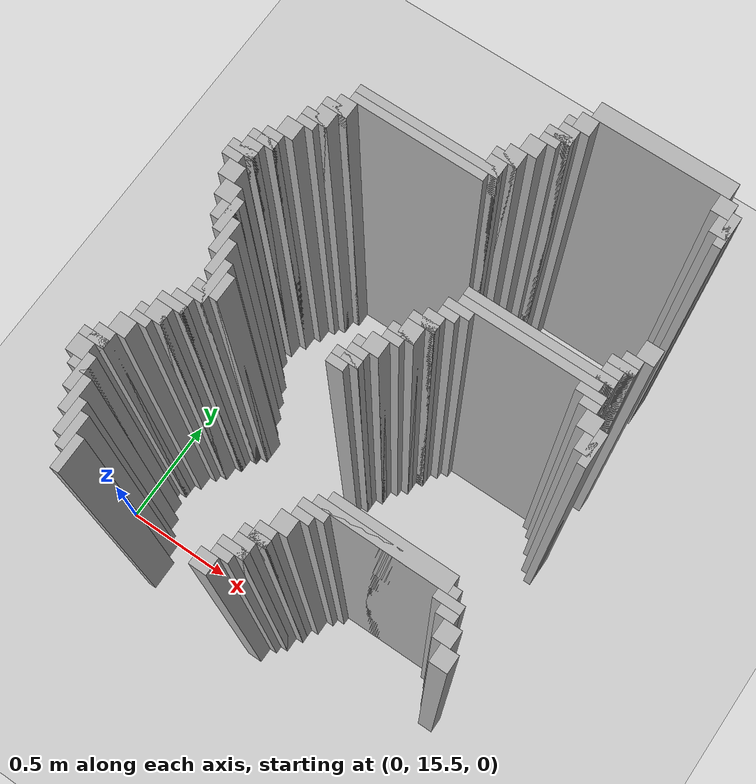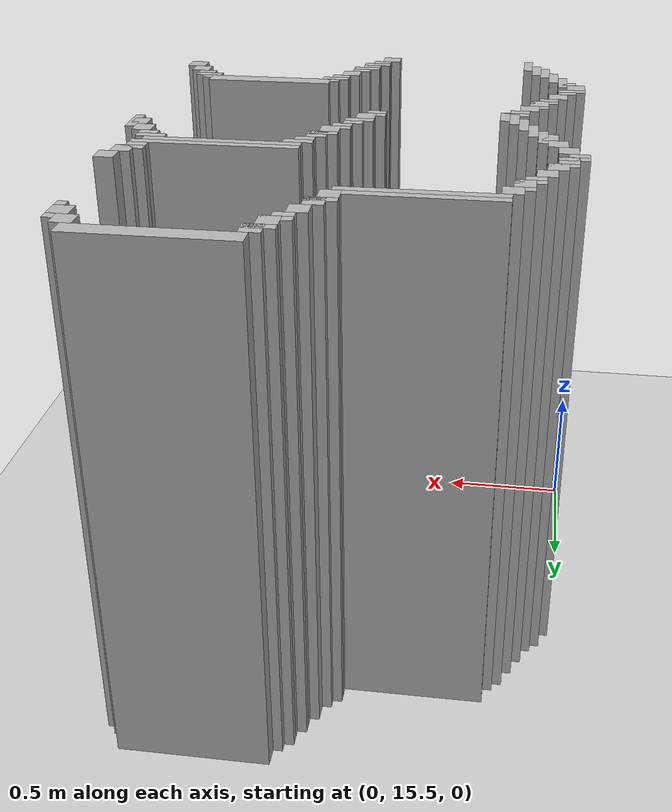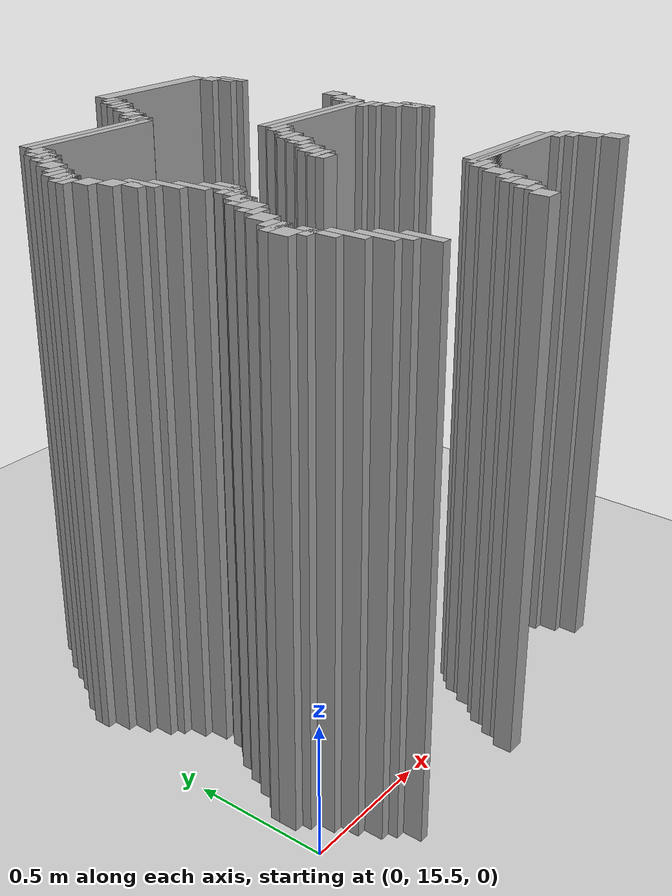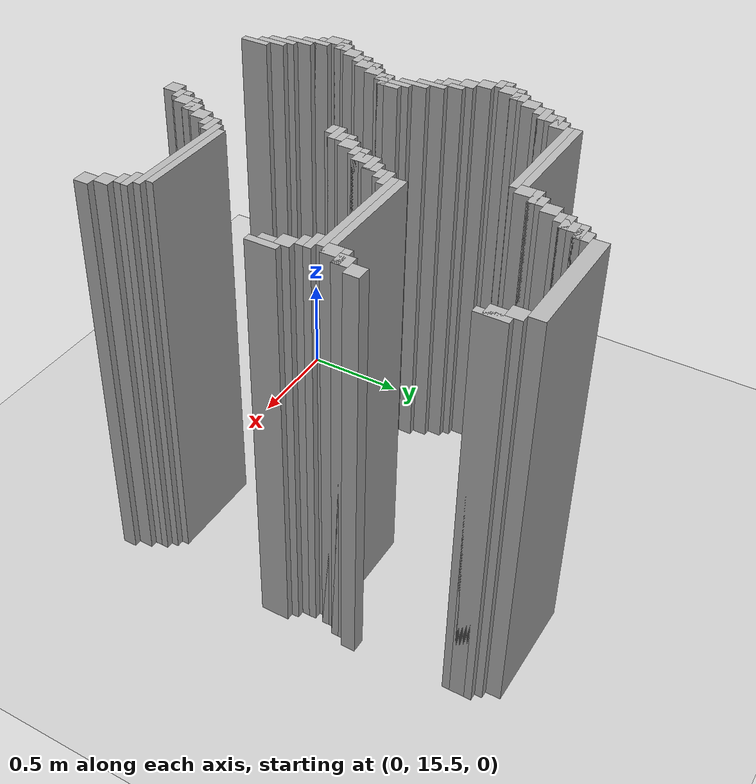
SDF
<sdf version="1.6">
 <world name="slam_world">
  <model name="ground_plane">
   <static>true</static>
   <link name="link">
    <collision name="collision">
     <geometry><plane><normal>0 0 1</normal><size>100 100</size></plane></geometry>
    </collision>
    <visual name="visual">
     <geometry><plane><normal>0 0 1</normal><size>100 100</size></plane></geometry>
     <material>
      <ambient>0.8 0.8 0.8 1</ambient>
      <diffuse>0.8 0.8 0.8 1</diffuse>
      <specular>0.8 0.8 0.8 1</specular>
     </material>
    </visual>
   </link>
  </model>
  <model name="wall_0">
   <static>true</static>
   <pose>1.2877030162412992 17.366589327146173 1.0 0 0 0</pose>
   <link name="link">
    <collision name="collision">
     <geometry><box><size>0.5568445475638051 0.06960556844547564 2.0</size></box></geometry>
    </collision>
    <visual name="visual">
     <geometry><box><size>0.5568445475638051 0.06960556844547564 2.0</size></box></geometry>
     <material><ambient>0.5 0.5 0.5 1</ambient><diffuse>0.7 0.7 0.7 1</diffuse></material>
    </visual>
   </link>
  </model>
  <model name="wall_11">
   <static>true</static>
   <pose>1.0092807424593968 17.296983758700694 1.0 0 0 0</pose>
   <link name="link">
    <collision name="collision">
     <geometry><box><size>0.06960556844547564 0.06960556844547564 2.0</size></box></geometry>
    </collision>
    <visual name="visual">
     <geometry><box><size>0.06960556844547564 0.06960556844547564 2.0</size></box></geometry>
     <material><ambient>0.5 0.5 0.5 1</ambient><diffuse>0.7 0.7 0.7 1</diffuse></material>
    </visual>
   </link>
  </model>
  <model name="wall_12">
   <static>true</static>
   <pose>1.5661252900232019 17.296983758700694 1.0 0 0 0</pose>
   <link name="link">
    <collision name="collision">
     <geometry><box><size>0.06960556844547564 0.06960556844547564 2.0</size></box></geometry>
    </collision>
    <visual name="visual">
     <geometry><box><size>0.06960556844547564 0.06960556844547564 2.0</size></box></geometry>
     <material><ambient>0.5 0.5 0.5 1</ambient><diffuse>0.7 0.7 0.7 1</diffuse></material>
    </visual>
   </link>
  </model>
  <model name="wall_31">
   <static>true</static>
   <pose>0.9918793503480278 17.279582366589327 1.0 0 0 0</pose>
   <link name="link">
    <collision name="collision">
     <geometry><box><size>0.10440835266821345 0.03480278422273782 2.0</size></box></geometry>
    </collision>
    <visual name="visual">
     <geometry><box><size>0.10440835266821345 0.03480278422273782 2.0</size></box></geometry>
     <material><ambient>0.5 0.5 0.5 1</ambient><diffuse>0.7 0.7 0.7 1</diffuse></material>
    </visual>
   </link>
  </model>
  <model name="wall_32">
   <static>true</static>
   <pose>1.6183294663573085 17.22737819025522 1.0 0 0 0</pose>
   <link name="link">
    <collision name="collision">
     <geometry><box><size>0.03480278422273782 0.13921113689095127 2.0</size></box></geometry>
    </collision>
    <visual name="visual">
     <geometry><box><size>0.03480278422273782 0.13921113689095127 2.0</size></box></geometry>
     <material><ambient>0.5 0.5 0.5 1</ambient><diffuse>0.7 0.7 0.7 1</diffuse></material>
    </visual>
   </link>
  </model>
  <model name="wall_51">
   <static>true</static>
   <pose>0.974477958236659 17.22737819025522 1.0 0 0 0</pose>
   <link name="link">
    <collision name="collision">
     <geometry><box><size>0.06960556844547564 0.06960556844547564 2.0</size></box></geometry>
    </collision>
    <visual name="visual">
     <geometry><box><size>0.06960556844547564 0.06960556844547564 2.0</size></box></geometry>
     <material><ambient>0.5 0.5 0.5 1</ambient><diffuse>0.7 0.7 0.7 1</diffuse></material>
    </visual>
   </link>
  </model>
  <model name="wall_52">
   <static>true</static>
   <pose>1.6009280742459395 17.22737819025522 1.0 0 0 0</pose>
   <link name="link">
    <collision name="collision">
     <geometry><box><size>0.06960556844547564 0.06960556844547564 2.0</size></box></geometry>
    </collision>
    <visual name="visual">
     <geometry><box><size>0.06960556844547564 0.06960556844547564 2.0</size></box></geometry>
     <material><ambient>0.5 0.5 0.5 1</ambient><diffuse>0.7 0.7 0.7 1</diffuse></material>
    </visual>
   </link>
  </model>
  <model name="wall_71">
   <static>true</static>
   <pose>0.95707656612529 17.209976798143853 1.0 0 0 0</pose>
   <link name="link">
    <collision name="collision">
     <geometry><box><size>0.10440835266821345 0.03480278422273782 2.0</size></box></geometry>
    </collision>
    <visual name="visual">
     <geometry><box><size>0.10440835266821345 0.03480278422273782 2.0</size></box></geometry>
     <material><ambient>0.5 0.5 0.5 1</ambient><diffuse>0.7 0.7 0.7 1</diffuse></material>
    </visual>
   </link>
  </model>
  <model name="wall_91">
   <static>true</static>
   <pose>0.9396751740139211 17.17517401392111 1.0 0 0 0</pose>
   <link name="link">
    <collision name="collision">
     <geometry><box><size>0.06960556844547564 0.03480278422273782 2.0</size></box></geometry>
    </collision>
    <visual name="visual">
     <geometry><box><size>0.06960556844547564 0.03480278422273782 2.0</size></box></geometry>
     <material><ambient>0.5 0.5 0.5 1</ambient><diffuse>0.7 0.7 0.7 1</diffuse></material>
    </visual>
   </link>
  </model>
  <model name="wall_101">
   <static>true</static>
   <pose>0.9048723897911832 17.122969837587007 1.0 0 0 0</pose>
   <link name="link">
    <collision name="collision">
     <geometry><box><size>0.06960556844547564 0.06960556844547564 2.0</size></box></geometry>
    </collision>
    <visual name="visual">
     <geometry><box><size>0.06960556844547564 0.06960556844547564 2.0</size></box></geometry>
     <material><ambient>0.5 0.5 0.5 1</ambient><diffuse>0.7 0.7 0.7 1</diffuse></material>
    </visual>
   </link>
  </model>
  <model name="wall_121">
   <static>true</static>
   <pose>0.8700696055684455 17.053364269141532 1.0 0 0 0</pose>
   <link name="link">
    <collision name="collision">
     <geometry><box><size>0.06960556844547564 0.06960556844547564 2.0</size></box></geometry>
    </collision>
    <visual name="visual">
     <geometry><box><size>0.06960556844547564 0.06960556844547564 2.0</size></box></geometry>
     <material><ambient>0.5 0.5 0.5 1</ambient><diffuse>0.7 0.7 0.7 1</diffuse></material>
    </visual>
   </link>
  </model>
  <model name="wall_141">
   <static>true</static>
   <pose>0.8526682134570766 17.035962877030162 1.0 0 0 0</pose>
   <link name="link">
    <collision name="collision">
     <geometry><box><size>0.10440835266821345 0.03480278422273782 2.0</size></box></geometry>
    </collision>
    <visual name="visual">
     <geometry><box><size>0.10440835266821345 0.03480278422273782 2.0</size></box></geometry>
     <material><ambient>0.5 0.5 0.5 1</ambient><diffuse>0.7 0.7 0.7 1</diffuse></material>
    </visual>
   </link>
  </model>
  <model name="wall_161">
   <static>true</static>
   <pose>0.8352668213457076 16.983758700696054 1.0 0 0 0</pose>
   <link name="link">
    <collision name="collision">
     <geometry><box><size>0.06960556844547564 0.06960556844547564 2.0</size></box></geometry>
    </collision>
    <visual name="visual">
     <geometry><box><size>0.06960556844547564 0.06960556844547564 2.0</size></box></geometry>
     <material><ambient>0.5 0.5 0.5 1</ambient><diffuse>0.7 0.7 0.7 1</diffuse></material>
    </visual>
   </link>
  </model>
  <model name="wall_171">
   <static>true</static>
   <pose>0.574245939675174 16.966357308584687 1.0 0 0 0</pose>
   <link name="link">
    <collision name="collision">
     <geometry><box><size>0.5916473317865429 0.03480278422273782 2.0</size></box></geometry>
    </collision>
    <visual name="visual">
     <geometry><box><size>0.5916473317865429 0.03480278422273782 2.0</size></box></geometry>
     <material><ambient>0.5 0.5 0.5 1</ambient><diffuse>0.7 0.7 0.7 1</diffuse></material>
    </visual>
   </link>
  </model>
  <model name="wall_182">
   <static>true</static>
   <pose>0.5568445475638051 16.93155452436195 1.0 0 0 0</pose>
   <link name="link">
    <collision name="collision">
     <geometry><box><size>0.5568445475638051 0.03480278422273782 2.0</size></box></geometry>
    </collision>
    <visual name="visual">
     <geometry><box><size>0.5568445475638051 0.03480278422273782 2.0</size></box></geometry>
     <material><ambient>0.5 0.5 0.5 1</ambient><diffuse>0.7 0.7 0.7 1</diffuse></material>
    </visual>
   </link>
  </model>
  <model name="wall_192">
   <static>true</static>
   <pose>0.27842227378190254 16.87935034802784 1.0 0 0 0</pose>
   <link name="link">
    <collision name="collision">
     <geometry><box><size>0.06960556844547564 0.06960556844547564 2.0</size></box></geometry>
    </collision>
    <visual name="visual">
     <geometry><box><size>0.06960556844547564 0.06960556844547564 2.0</size></box></geometry>
     <material><ambient>0.5 0.5 0.5 1</ambient><diffuse>0.7 0.7 0.7 1</diffuse></material>
    </visual>
   </link>
  </model>
  <model name="wall_202">
   <static>true</static>
   <pose>0.2610208816705336 16.86194895591647 1.0 0 0 0</pose>
   <link name="link">
    <collision name="collision">
     <geometry><box><size>0.10440835266821345 0.03480278422273782 2.0</size></box></geometry>
    </collision>
    <visual name="visual">
     <geometry><box><size>0.10440835266821345 0.03480278422273782 2.0</size></box></geometry>
     <material><ambient>0.5 0.5 0.5 1</ambient><diffuse>0.7 0.7 0.7 1</diffuse></material>
    </visual>
   </link>
  </model>
  <model name="wall_212">
   <static>true</static>
   <pose>0.24361948955916474 16.809744779582367 1.0 0 0 0</pose>
   <link name="link">
    <collision name="collision">
     <geometry><box><size>0.06960556844547564 0.06960556844547564 2.0</size></box></geometry>
    </collision>
    <visual name="visual">
     <geometry><box><size>0.06960556844547564 0.06960556844547564 2.0</size></box></geometry>
     <material><ambient>0.5 0.5 0.5 1</ambient><diffuse>0.7 0.7 0.7 1</diffuse></material>
    </visual>
   </link>
  </model>
  <model name="wall_222">
   <static>true</static>
   <pose>0.2262180974477958 16.792343387470996 1.0 0 0 0</pose>
   <link name="link">
    <collision name="collision">
     <geometry><box><size>0.10440835266821345 0.03480278422273782 2.0</size></box></geometry>
    </collision>
    <visual name="visual">
     <geometry><box><size>0.10440835266821345 0.03480278422273782 2.0</size></box></geometry>
     <material><ambient>0.5 0.5 0.5 1</ambient><diffuse>0.7 0.7 0.7 1</diffuse></material>
    </visual>
   </link>
  </model>
  <model name="wall_232">
   <static>true</static>
   <pose>0.2088167053364269 16.75754060324826 1.0 0 0 0</pose>
   <link name="link">
    <collision name="collision">
     <geometry><box><size>0.06960556844547564 0.03480278422273782 2.0</size></box></geometry>
    </collision>
    <visual name="visual">
     <geometry><box><size>0.06960556844547564 0.03480278422273782 2.0</size></box></geometry>
     <material><ambient>0.5 0.5 0.5 1</ambient><diffuse>0.7 0.7 0.7 1</diffuse></material>
    </visual>
   </link>
  </model>
  <model name="wall_238">
   <static>true</static>
   <pose>0.17401392111368907 16.70533642691415 1.0 0 0 0</pose>
   <link name="link">
    <collision name="collision">
     <geometry><box><size>0.06960556844547564 0.06960556844547564 2.0</size></box></geometry>
    </collision>
    <visual name="visual">
     <geometry><box><size>0.06960556844547564 0.06960556844547564 2.0</size></box></geometry>
     <material><ambient>0.5 0.5 0.5 1</ambient><diffuse>0.7 0.7 0.7 1</diffuse></material>
    </visual>
   </link>
  </model>
  <model name="wall_239">
   <static>true</static>
   <pose>1.6357308584686774 16.70533642691415 1.0 0 0 0</pose>
   <link name="link">
    <collision name="collision">
     <geometry><box><size>0.06960556844547564 0.06960556844547564 2.0</size></box></geometry>
    </collision>
    <visual name="visual">
     <geometry><box><size>0.06960556844547564 0.06960556844547564 2.0</size></box></geometry>
     <material><ambient>0.5 0.5 0.5 1</ambient><diffuse>0.7 0.7 0.7 1</diffuse></material>
    </visual>
   </link>
  </model>
  <model name="wall_248">
   <static>true</static>
   <pose>0.13921113689095127 16.635730858468676 1.0 0 0 0</pose>
   <link name="link">
    <collision name="collision">
     <geometry><box><size>0.06960556844547564 0.06960556844547564 2.0</size></box></geometry>
    </collision>
    <visual name="visual">
     <geometry><box><size>0.06960556844547564 0.06960556844547564 2.0</size></box></geometry>
     <material><ambient>0.5 0.5 0.5 1</ambient><diffuse>0.7 0.7 0.7 1</diffuse></material>
    </visual>
   </link>
  </model>
  <model name="wall_249">
   <static>true</static>
   <pose>1.6009280742459395 16.635730858468676 1.0 0 0 0</pose>
   <link name="link">
    <collision name="collision">
     <geometry><box><size>0.06960556844547564 0.06960556844547564 2.0</size></box></geometry>
    </collision>
    <visual name="visual">
     <geometry><box><size>0.06960556844547564 0.06960556844547564 2.0</size></box></geometry>
     <material><ambient>0.5 0.5 0.5 1</ambient><diffuse>0.7 0.7 0.7 1</diffuse></material>
    </visual>
   </link>
  </model>
  <model name="wall_258">
   <static>true</static>
   <pose>0.12180974477958237 16.61832946635731 1.0 0 0 0</pose>
   <link name="link">
    <collision name="collision">
     <geometry><box><size>0.10440835266821345 0.03480278422273782 2.0</size></box></geometry>
    </collision>
    <visual name="visual">
     <geometry><box><size>0.10440835266821345 0.03480278422273782 2.0</size></box></geometry>
     <material><ambient>0.5 0.5 0.5 1</ambient><diffuse>0.7 0.7 0.7 1</diffuse></material>
    </visual>
   </link>
  </model>
  <model name="wall_259">
   <static>true</static>
   <pose>1.5835266821345706 16.61832946635731 1.0 0 0 0</pose>
   <link name="link">
    <collision name="collision">
     <geometry><box><size>0.10440835266821345 0.03480278422273782 2.0</size></box></geometry>
    </collision>
    <visual name="visual">
     <geometry><box><size>0.10440835266821345 0.03480278422273782 2.0</size></box></geometry>
     <material><ambient>0.5 0.5 0.5 1</ambient><diffuse>0.7 0.7 0.7 1</diffuse></material>
    </visual>
   </link>
  </model>
  <model name="wall_268">
   <static>true</static>
   <pose>0.10440835266821345 16.5661252900232 1.0 0 0 0</pose>
   <link name="link">
    <collision name="collision">
     <geometry><box><size>0.06960556844547564 0.06960556844547564 2.0</size></box></geometry>
    </collision>
    <visual name="visual">
     <geometry><box><size>0.06960556844547564 0.06960556844547564 2.0</size></box></geometry>
     <material><ambient>0.5 0.5 0.5 1</ambient><diffuse>0.7 0.7 0.7 1</diffuse></material>
    </visual>
   </link>
  </model>
  <model name="wall_269">
   <static>true</static>
   <pose>1.5661252900232019 16.5661252900232 1.0 0 0 0</pose>
   <link name="link">
    <collision name="collision">
     <geometry><box><size>0.06960556844547564 0.06960556844547564 2.0</size></box></geometry>
    </collision>
    <visual name="visual">
     <geometry><box><size>0.06960556844547564 0.06960556844547564 2.0</size></box></geometry>
     <material><ambient>0.5 0.5 0.5 1</ambient><diffuse>0.7 0.7 0.7 1</diffuse></material>
    </visual>
   </link>
  </model>
  <model name="wall_274">
   <static>true</static>
   <pose>0.08700696055684454 16.54872389791183 1.0 0 0 0</pose>
   <link name="link">
    <collision name="collision">
     <geometry><box><size>0.10440835266821345 0.03480278422273782 2.0</size></box></geometry>
    </collision>
    <visual name="visual">
     <geometry><box><size>0.10440835266821345 0.03480278422273782 2.0</size></box></geometry>
     <material><ambient>0.5 0.5 0.5 1</ambient><diffuse>0.7 0.7 0.7 1</diffuse></material>
    </visual>
   </link>
  </model>
  <model name="wall_275">
   <static>true</static>
   <pose>1.3051044083526682 16.54872389791183 1.0 0 0 0</pose>
   <link name="link">
    <collision name="collision">
     <geometry><box><size>0.5916473317865429 0.03480278422273782 2.0</size></box></geometry>
    </collision>
    <visual name="visual">
     <geometry><box><size>0.5916473317865429 0.03480278422273782 2.0</size></box></geometry>
     <material><ambient>0.5 0.5 0.5 1</ambient><diffuse>0.7 0.7 0.7 1</diffuse></material>
    </visual>
   </link>
  </model>
  <model name="wall_287">
   <static>true</static>
   <pose>0.06960556844547564 16.513921113689094 1.0 0 0 0</pose>
   <link name="link">
    <collision name="collision">
     <geometry><box><size>0.06960556844547564 0.03480278422273782 2.0</size></box></geometry>
    </collision>
    <visual name="visual">
     <geometry><box><size>0.06960556844547564 0.03480278422273782 2.0</size></box></geometry>
     <material><ambient>0.5 0.5 0.5 1</ambient><diffuse>0.7 0.7 0.7 1</diffuse></material>
    </visual>
   </link>
  </model>
  <model name="wall_288">
   <static>true</static>
   <pose>1.2877030162412992 16.513921113689094 1.0 0 0 0</pose>
   <link name="link">
    <collision name="collision">
     <geometry><box><size>0.5568445475638051 0.03480278422273782 2.0</size></box></geometry>
    </collision>
    <visual name="visual">
     <geometry><box><size>0.5568445475638051 0.03480278422273782 2.0</size></box></geometry>
     <material><ambient>0.5 0.5 0.5 1</ambient><diffuse>0.7 0.7 0.7 1</diffuse></material>
    </visual>
   </link>
  </model>
  <model name="wall_293">
   <static>true</static>
   <pose>0.10440835266821345 16.46171693735499 1.0 0 0 0</pose>
   <link name="link">
    <collision name="collision">
     <geometry><box><size>0.06960556844547564 0.06960556844547564 2.0</size></box></geometry>
    </collision>
    <visual name="visual">
     <geometry><box><size>0.06960556844547564 0.06960556844547564 2.0</size></box></geometry>
     <material><ambient>0.5 0.5 0.5 1</ambient><diffuse>0.7 0.7 0.7 1</diffuse></material>
    </visual>
   </link>
  </model>
  <model name="wall_294">
   <static>true</static>
   <pose>1.0266821345707655 16.479118329466356 1.0 0 0 0</pose>
   <link name="link">
    <collision name="collision">
     <geometry><box><size>0.10440835266821345 0.03480278422273782 2.0</size></box></geometry>
    </collision>
    <visual name="visual">
     <geometry><box><size>0.10440835266821345 0.03480278422273782 2.0</size></box></geometry>
     <material><ambient>0.5 0.5 0.5 1</ambient><diffuse>0.7 0.7 0.7 1</diffuse></material>
    </visual>
   </link>
  </model>
  <model name="wall_295">
   <static>true</static>
   <pose>1.548723897911833 16.479118329466356 1.0 0 0 0</pose>
   <link name="link">
    <collision name="collision">
     <geometry><box><size>0.10440835266821345 0.03480278422273782 2.0</size></box></geometry>
    </collision>
    <visual name="visual">
     <geometry><box><size>0.10440835266821345 0.03480278422273782 2.0</size></box></geometry>
     <material><ambient>0.5 0.5 0.5 1</ambient><diffuse>0.7 0.7 0.7 1</diffuse></material>
    </visual>
   </link>
  </model>
  <model name="wall_306">
   <static>true</static>
   <pose>1.0092807424593968 16.44431554524362 1.0 0 0 0</pose>
   <link name="link">
    <collision name="collision">
     <geometry><box><size>0.06960556844547564 0.03480278422273782 2.0</size></box></geometry>
    </collision>
    <visual name="visual">
     <geometry><box><size>0.06960556844547564 0.03480278422273782 2.0</size></box></geometry>
     <material><ambient>0.5 0.5 0.5 1</ambient><diffuse>0.7 0.7 0.7 1</diffuse></material>
    </visual>
   </link>
  </model>
  <model name="wall_307">
   <static>true</static>
   <pose>1.5661252900232019 16.44431554524362 1.0 0 0 0</pose>
   <link name="link">
    <collision name="collision">
     <geometry><box><size>0.06960556844547564 0.03480278422273782 2.0</size></box></geometry>
    </collision>
    <visual name="visual">
     <geometry><box><size>0.06960556844547564 0.03480278422273782 2.0</size></box></geometry>
     <material><ambient>0.5 0.5 0.5 1</ambient><diffuse>0.7 0.7 0.7 1</diffuse></material>
    </visual>
   </link>
  </model>
  <model name="wall_316">
   <static>true</static>
   <pose>0.13921113689095127 16.39211136890951 1.0 0 0 0</pose>
   <link name="link">
    <collision name="collision">
     <geometry><box><size>0.06960556844547564 0.06960556844547564 2.0</size></box></geometry>
    </collision>
    <visual name="visual">
     <geometry><box><size>0.06960556844547564 0.06960556844547564 2.0</size></box></geometry>
     <material><ambient>0.5 0.5 0.5 1</ambient><diffuse>0.7 0.7 0.7 1</diffuse></material>
    </visual>
   </link>
  </model>
  <model name="wall_317">
   <static>true</static>
   <pose>0.974477958236659 16.39211136890951 1.0 0 0 0</pose>
   <link name="link">
    <collision name="collision">
     <geometry><box><size>0.06960556844547564 0.06960556844547564 2.0</size></box></geometry>
    </collision>
    <visual name="visual">
     <geometry><box><size>0.06960556844547564 0.06960556844547564 2.0</size></box></geometry>
     <material><ambient>0.5 0.5 0.5 1</ambient><diffuse>0.7 0.7 0.7 1</diffuse></material>
    </visual>
   </link>
  </model>
  <model name="wall_318">
   <static>true</static>
   <pose>1.6009280742459395 16.39211136890951 1.0 0 0 0</pose>
   <link name="link">
    <collision name="collision">
     <geometry><box><size>0.06960556844547564 0.06960556844547564 2.0</size></box></geometry>
    </collision>
    <visual name="visual">
     <geometry><box><size>0.06960556844547564 0.06960556844547564 2.0</size></box></geometry>
     <material><ambient>0.5 0.5 0.5 1</ambient><diffuse>0.7 0.7 0.7 1</diffuse></material>
    </visual>
   </link>
  </model>
  <model name="wall_329">
   <static>true</static>
   <pose>0.191415313225058 16.322505800464036 1.0 0 0 0</pose>
   <link name="link">
    <collision name="collision">
     <geometry><box><size>0.03480278422273782 0.13921113689095127 2.0</size></box></geometry>
    </collision>
    <visual name="visual">
     <geometry><box><size>0.03480278422273782 0.13921113689095127 2.0</size></box></geometry>
     <material><ambient>0.5 0.5 0.5 1</ambient><diffuse>0.7 0.7 0.7 1</diffuse></material>
    </visual>
   </link>
  </model>
  <model name="wall_330">
   <static>true</static>
   <pose>0.95707656612529 16.374709976798144 1.0 0 0 0</pose>
   <link name="link">
    <collision name="collision">
     <geometry><box><size>0.10440835266821345 0.03480278422273782 2.0</size></box></geometry>
    </collision>
    <visual name="visual">
     <geometry><box><size>0.10440835266821345 0.03480278422273782 2.0</size></box></geometry>
     <material><ambient>0.5 0.5 0.5 1</ambient><diffuse>0.7 0.7 0.7 1</diffuse></material>
    </visual>
   </link>
  </model>
  <model name="wall_331">
   <static>true</static>
   <pose>1.6531322505800463 16.322505800464036 1.0 0 0 0</pose>
   <link name="link">
    <collision name="collision">
     <geometry><box><size>0.03480278422273782 0.13921113689095127 2.0</size></box></geometry>
    </collision>
    <visual name="visual">
     <geometry><box><size>0.03480278422273782 0.13921113689095127 2.0</size></box></geometry>
     <material><ambient>0.5 0.5 0.5 1</ambient><diffuse>0.7 0.7 0.7 1</diffuse></material>
    </visual>
   </link>
  </model>
  <model name="wall_342">
   <static>true</static>
   <pose>0.17401392111368907 16.322505800464036 1.0 0 0 0</pose>
   <link name="link">
    <collision name="collision">
     <geometry><box><size>0.06960556844547564 0.06960556844547564 2.0</size></box></geometry>
    </collision>
    <visual name="visual">
     <geometry><box><size>0.06960556844547564 0.06960556844547564 2.0</size></box></geometry>
     <material><ambient>0.5 0.5 0.5 1</ambient><diffuse>0.7 0.7 0.7 1</diffuse></material>
    </visual>
   </link>
  </model>
  <model name="wall_343">
   <static>true</static>
   <pose>0.9396751740139211 16.322505800464036 1.0 0 0 0</pose>
   <link name="link">
    <collision name="collision">
     <geometry><box><size>0.06960556844547564 0.06960556844547564 2.0</size></box></geometry>
    </collision>
    <visual name="visual">
     <geometry><box><size>0.06960556844547564 0.06960556844547564 2.0</size></box></geometry>
     <material><ambient>0.5 0.5 0.5 1</ambient><diffuse>0.7 0.7 0.7 1</diffuse></material>
    </visual>
   </link>
  </model>
  <model name="wall_344">
   <static>true</static>
   <pose>1.6357308584686774 16.322505800464036 1.0 0 0 0</pose>
   <link name="link">
    <collision name="collision">
     <geometry><box><size>0.06960556844547564 0.06960556844547564 2.0</size></box></geometry>
    </collision>
    <visual name="visual">
     <geometry><box><size>0.06960556844547564 0.06960556844547564 2.0</size></box></geometry>
     <material><ambient>0.5 0.5 0.5 1</ambient><diffuse>0.7 0.7 0.7 1</diffuse></material>
    </visual>
   </link>
  </model>
  <model name="wall_355">
   <static>true</static>
   <pose>0.2262180974477958 16.25290023201856 1.0 0 0 0</pose>
   <link name="link">
    <collision name="collision">
     <geometry><box><size>0.03480278422273782 0.13921113689095127 2.0</size></box></geometry>
    </collision>
    <visual name="visual">
     <geometry><box><size>0.03480278422273782 0.13921113689095127 2.0</size></box></geometry>
     <material><ambient>0.5 0.5 0.5 1</ambient><diffuse>0.7 0.7 0.7 1</diffuse></material>
    </visual>
   </link>
  </model>
  <model name="wall_356">
   <static>true</static>
   <pose>0.9222737819025522 16.30510440835267 1.0 0 0 0</pose>
   <link name="link">
    <collision name="collision">
     <geometry><box><size>0.10440835266821345 0.03480278422273782 2.0</size></box></geometry>
    </collision>
    <visual name="visual">
     <geometry><box><size>0.10440835266821345 0.03480278422273782 2.0</size></box></geometry>
     <material><ambient>0.5 0.5 0.5 1</ambient><diffuse>0.7 0.7 0.7 1</diffuse></material>
    </visual>
   </link>
  </model>
  <model name="wall_368">
   <static>true</static>
   <pose>0.9048723897911832 16.270301624129928 1.0 0 0 0</pose>
   <link name="link">
    <collision name="collision">
     <geometry><box><size>0.06960556844547564 0.03480278422273782 2.0</size></box></geometry>
    </collision>
    <visual name="visual">
     <geometry><box><size>0.06960556844547564 0.03480278422273782 2.0</size></box></geometry>
     <material><ambient>0.5 0.5 0.5 1</ambient><diffuse>0.7 0.7 0.7 1</diffuse></material>
    </visual>
   </link>
  </model>
  <model name="wall_373">
   <static>true</static>
   <pose>0.2610208816705336 16.183294663573086 1.0 0 0 0</pose>
   <link name="link">
    <collision name="collision">
     <geometry><box><size>0.03480278422273782 0.13921113689095127 2.0</size></box></geometry>
    </collision>
    <visual name="visual">
     <geometry><box><size>0.03480278422273782 0.13921113689095127 2.0</size></box></geometry>
     <material><ambient>0.5 0.5 0.5 1</ambient><diffuse>0.7 0.7 0.7 1</diffuse></material>
    </visual>
   </link>
  </model>
  <model name="wall_374">
   <static>true</static>
   <pose>0.8700696055684455 16.218097447795824 1.0 0 0 0</pose>
   <link name="link">
    <collision name="collision">
     <geometry><box><size>0.06960556844547564 0.06960556844547564 2.0</size></box></geometry>
    </collision>
    <visual name="visual">
     <geometry><box><size>0.06960556844547564 0.06960556844547564 2.0</size></box></geometry>
     <material><ambient>0.5 0.5 0.5 1</ambient><diffuse>0.7 0.7 0.7 1</diffuse></material>
    </visual>
   </link>
  </model>
  <model name="wall_386">
   <static>true</static>
   <pose>0.8526682134570766 16.200696055684453 1.0 0 0 0</pose>
   <link name="link">
    <collision name="collision">
     <geometry><box><size>0.10440835266821345 0.03480278422273782 2.0</size></box></geometry>
    </collision>
    <visual name="visual">
     <geometry><box><size>0.10440835266821345 0.03480278422273782 2.0</size></box></geometry>
     <material><ambient>0.5 0.5 0.5 1</ambient><diffuse>0.7 0.7 0.7 1</diffuse></material>
    </visual>
   </link>
  </model>
  <model name="wall_391">
   <static>true</static>
   <pose>0.29582366589327147 16.09628770301624 1.0 0 0 0</pose>
   <link name="link">
    <collision name="collision">
     <geometry><box><size>0.03480278422273782 0.17401392111368907 2.0</size></box></geometry>
    </collision>
    <visual name="visual">
     <geometry><box><size>0.03480278422273782 0.17401392111368907 2.0</size></box></geometry>
     <material><ambient>0.5 0.5 0.5 1</ambient><diffuse>0.7 0.7 0.7 1</diffuse></material>
    </visual>
   </link>
  </model>
  <model name="wall_392">
   <static>true</static>
   <pose>0.8352668213457076 16.14849187935035 1.0 0 0 0</pose>
   <link name="link">
    <collision name="collision">
     <geometry><box><size>0.06960556844547564 0.06960556844547564 2.0</size></box></geometry>
    </collision>
    <visual name="visual">
     <geometry><box><size>0.06960556844547564 0.06960556844547564 2.0</size></box></geometry>
     <material><ambient>0.5 0.5 0.5 1</ambient><diffuse>0.7 0.7 0.7 1</diffuse></material>
    </visual>
   </link>
  </model>
  <model name="wall_404">
   <static>true</static>
   <pose>0.3306264501160093 16.09628770301624 1.0 0 0 0</pose>
   <link name="link">
    <collision name="collision">
     <geometry><box><size>0.03480278422273782 0.10440835266821345 2.0</size></box></geometry>
    </collision>
    <visual name="visual">
     <geometry><box><size>0.03480278422273782 0.10440835266821345 2.0</size></box></geometry>
     <material><ambient>0.5 0.5 0.5 1</ambient><diffuse>0.7 0.7 0.7 1</diffuse></material>
    </visual>
   </link>
  </model>
  <model name="wall_405">
   <static>true</static>
   <pose>0.8178654292343387 16.13109048723898 1.0 0 0 0</pose>
   <link name="link">
    <collision name="collision">
     <geometry><box><size>0.10440835266821345 0.03480278422273782 2.0</size></box></geometry>
    </collision>
    <visual name="visual">
     <geometry><box><size>0.10440835266821345 0.03480278422273782 2.0</size></box></geometry>
     <material><ambient>0.5 0.5 0.5 1</ambient><diffuse>0.7 0.7 0.7 1</diffuse></material>
    </visual>
   </link>
  </model>
  <model name="wall_416">
   <static>true</static>
   <pose>0.8004640371229698 16.09628770301624 1.0 0 0 0</pose>
   <link name="link">
    <collision name="collision">
     <geometry><box><size>0.06960556844547564 0.03480278422273782 2.0</size></box></geometry>
    </collision>
    <visual name="visual">
     <geometry><box><size>0.06960556844547564 0.03480278422273782 2.0</size></box></geometry>
     <material><ambient>0.5 0.5 0.5 1</ambient><diffuse>0.7 0.7 0.7 1</diffuse></material>
    </visual>
   </link>
  </model>
  <model name="wall_429">
   <static>true</static>
   <pose>0.29582366589327147 16.061484918793504 1.0 0 0 0</pose>
   <link name="link">
    <collision name="collision">
     <geometry><box><size>0.10440835266821345 0.03480278422273782 2.0</size></box></geometry>
    </collision>
    <visual name="visual">
     <geometry><box><size>0.10440835266821345 0.03480278422273782 2.0</size></box></geometry>
     <material><ambient>0.5 0.5 0.5 1</ambient><diffuse>0.7 0.7 0.7 1</diffuse></material>
    </visual>
   </link>
  </model>
  <model name="wall_444">
   <static>true</static>
   <pose>0.27842227378190254 16.026682134570766 1.0 0 0 0</pose>
   <link name="link">
    <collision name="collision">
     <geometry><box><size>0.06960556844547564 0.03480278422273782 2.0</size></box></geometry>
    </collision>
    <visual name="visual">
     <geometry><box><size>0.06960556844547564 0.03480278422273782 2.0</size></box></geometry>
     <material><ambient>0.5 0.5 0.5 1</ambient><diffuse>0.7 0.7 0.7 1</diffuse></material>
    </visual>
   </link>
  </model>
  <model name="wall_459">
   <static>true</static>
   <pose>0.24361948955916474 15.974477958236658 1.0 0 0 0</pose>
   <link name="link">
    <collision name="collision">
     <geometry><box><size>0.06960556844547564 0.06960556844547564 2.0</size></box></geometry>
    </collision>
    <visual name="visual">
     <geometry><box><size>0.06960556844547564 0.06960556844547564 2.0</size></box></geometry>
     <material><ambient>0.5 0.5 0.5 1</ambient><diffuse>0.7 0.7 0.7 1</diffuse></material>
    </visual>
   </link>
  </model>
  <model name="wall_474">
   <static>true</static>
   <pose>0.2262180974477958 15.95707656612529 1.0 0 0 0</pose>
   <link name="link">
    <collision name="collision">
     <geometry><box><size>0.10440835266821345 0.03480278422273782 2.0</size></box></geometry>
    </collision>
    <visual name="visual">
     <geometry><box><size>0.10440835266821345 0.03480278422273782 2.0</size></box></geometry>
     <material><ambient>0.5 0.5 0.5 1</ambient><diffuse>0.7 0.7 0.7 1</diffuse></material>
    </visual>
   </link>
  </model>
  <model name="wall_489">
   <static>true</static>
   <pose>0.2088167053364269 15.904872389791183 1.0 0 0 0</pose>
   <link name="link">
    <collision name="collision">
     <geometry><box><size>0.06960556844547564 0.06960556844547564 2.0</size></box></geometry>
    </collision>
    <visual name="visual">
     <geometry><box><size>0.06960556844547564 0.06960556844547564 2.0</size></box></geometry>
     <material><ambient>0.5 0.5 0.5 1</ambient><diffuse>0.7 0.7 0.7 1</diffuse></material>
    </visual>
   </link>
  </model>
  <model name="wall_498">
   <static>true</static>
   <pose>0.191415313225058 15.887470997679813 1.0 0 0 0</pose>
   <link name="link">
    <collision name="collision">
     <geometry><box><size>0.10440835266821345 0.03480278422273782 2.0</size></box></geometry>
    </collision>
    <visual name="visual">
     <geometry><box><size>0.10440835266821345 0.03480278422273782 2.0</size></box></geometry>
     <material><ambient>0.5 0.5 0.5 1</ambient><diffuse>0.7 0.7 0.7 1</diffuse></material>
    </visual>
   </link>
  </model>
  <model name="wall_513">
   <static>true</static>
   <pose>0.17401392111368907 15.852668213457076 1.0 0 0 0</pose>
   <link name="link">
    <collision name="collision">
     <geometry><box><size>0.06960556844547564 0.03480278422273782 2.0</size></box></geometry>
    </collision>
    <visual name="visual">
     <geometry><box><size>0.06960556844547564 0.03480278422273782 2.0</size></box></geometry>
     <material><ambient>0.5 0.5 0.5 1</ambient><diffuse>0.7 0.7 0.7 1</diffuse></material>
    </visual>
   </link>
  </model>
  <model name="wall_521">
   <static>true</static>
   <pose>0.13921113689095127 15.80046403712297 1.0 0 0 0</pose>
   <link name="link">
    <collision name="collision">
     <geometry><box><size>0.06960556844547564 0.06960556844547564 2.0</size></box></geometry>
    </collision>
    <visual name="visual">
     <geometry><box><size>0.06960556844547564 0.06960556844547564 2.0</size></box></geometry>
     <material><ambient>0.5 0.5 0.5 1</ambient><diffuse>0.7 0.7 0.7 1</diffuse></material>
    </visual>
   </link>
  </model>
  <model name="wall_536">
   <static>true</static>
   <pose>0.10440835266821345 15.730858468677493 1.0 0 0 0</pose>
   <link name="link">
    <collision name="collision">
     <geometry><box><size>0.06960556844547564 0.06960556844547564 2.0</size></box></geometry>
    </collision>
    <visual name="visual">
     <geometry><box><size>0.06960556844547564 0.06960556844547564 2.0</size></box></geometry>
     <material><ambient>0.5 0.5 0.5 1</ambient><diffuse>0.7 0.7 0.7 1</diffuse></material>
    </visual>
   </link>
  </model>
  <model name="wall_551">
   <static>true</static>
   <pose>0.08700696055684454 15.713457076566124 1.0 0 0 0</pose>
   <link name="link">
    <collision name="collision">
     <geometry><box><size>0.10440835266821345 0.03480278422273782 2.0</size></box></geometry>
    </collision>
    <visual name="visual">
     <geometry><box><size>0.10440835266821345 0.03480278422273782 2.0</size></box></geometry>
     <material><ambient>0.5 0.5 0.5 1</ambient><diffuse>0.7 0.7 0.7 1</diffuse></material>
    </visual>
   </link>
  </model>
  <model name="wall_552">
   <static>true</static>
   <pose>1.2877030162412992 15.696055684454755 1.0 0 0 0</pose>
   <link name="link">
    <collision name="collision">
     <geometry><box><size>0.4872389791183295 0.06960556844547564 2.0</size></box></geometry>
    </collision>
    <visual name="visual">
     <geometry><box><size>0.4872389791183295 0.06960556844547564 2.0</size></box></geometry>
     <material><ambient>0.5 0.5 0.5 1</ambient><diffuse>0.7 0.7 0.7 1</diffuse></material>
    </visual>
   </link>
  </model>
  <model name="wall_564">
   <static>true</static>
   <pose>0.06960556844547564 15.661252900232018 1.0 0 0 0</pose>
   <link name="link">
    <collision name="collision">
     <geometry><box><size>0.06960556844547564 0.06960556844547564 2.0</size></box></geometry>
    </collision>
    <visual name="visual">
     <geometry><box><size>0.06960556844547564 0.06960556844547564 2.0</size></box></geometry>
     <material><ambient>0.5 0.5 0.5 1</ambient><diffuse>0.7 0.7 0.7 1</diffuse></material>
    </visual>
   </link>
  </model>
  <model name="wall_565">
   <static>true</static>
   <pose>1.2877030162412992 15.678654292343387 1.0 0 0 0</pose>
   <link name="link">
    <collision name="collision">
     <geometry><box><size>0.5568445475638051 0.03480278422273782 2.0</size></box></geometry>
    </collision>
    <visual name="visual">
     <geometry><box><size>0.5568445475638051 0.03480278422273782 2.0</size></box></geometry>
     <material><ambient>0.5 0.5 0.5 1</ambient><diffuse>0.7 0.7 0.7 1</diffuse></material>
    </visual>
   </link>
  </model>
  <model name="wall_575">
   <static>true</static>
   <pose>0.12180974477958237 15.591647331786543 1.0 0 0 0</pose>
   <link name="link">
    <collision name="collision">
     <geometry><box><size>0.03480278422273782 0.13921113689095127 2.0</size></box></geometry>
    </collision>
    <visual name="visual">
     <geometry><box><size>0.03480278422273782 0.13921113689095127 2.0</size></box></geometry>
     <material><ambient>0.5 0.5 0.5 1</ambient><diffuse>0.7 0.7 0.7 1</diffuse></material>
    </visual>
   </link>
  </model>
  <model name="wall_576">
   <static>true</static>
   <pose>1.0266821345707655 15.64385150812065 1.0 0 0 0</pose>
   <link name="link">
    <collision name="collision">
     <geometry><box><size>0.10440835266821345 0.03480278422273782 2.0</size></box></geometry>
    </collision>
    <visual name="visual">
     <geometry><box><size>0.10440835266821345 0.03480278422273782 2.0</size></box></geometry>
     <material><ambient>0.5 0.5 0.5 1</ambient><diffuse>0.7 0.7 0.7 1</diffuse></material>
    </visual>
   </link>
  </model>
  <model name="wall_577">
   <static>true</static>
   <pose>1.548723897911833 15.64385150812065 1.0 0 0 0</pose>
   <link name="link">
    <collision name="collision">
     <geometry><box><size>0.10440835266821345 0.03480278422273782 2.0</size></box></geometry>
    </collision>
    <visual name="visual">
     <geometry><box><size>0.10440835266821345 0.03480278422273782 2.0</size></box></geometry>
     <material><ambient>0.5 0.5 0.5 1</ambient><diffuse>0.7 0.7 0.7 1</diffuse></material>
    </visual>
   </link>
  </model>
  <model name="wall_594">
   <static>true</static>
   <pose>0.10440835266821345 15.609048723897912 1.0 0 0 0</pose>
   <link name="link">
    <collision name="collision">
     <geometry><box><size>0.06960556844547564 0.03480278422273782 2.0</size></box></geometry>
    </collision>
    <visual name="visual">
     <geometry><box><size>0.06960556844547564 0.03480278422273782 2.0</size></box></geometry>
     <material><ambient>0.5 0.5 0.5 1</ambient><diffuse>0.7 0.7 0.7 1</diffuse></material>
    </visual>
   </link>
  </model>
  <model name="wall_595">
   <static>true</static>
   <pose>1.0092807424593968 15.609048723897912 1.0 0 0 0</pose>
   <link name="link">
    <collision name="collision">
     <geometry><box><size>0.06960556844547564 0.03480278422273782 2.0</size></box></geometry>
    </collision>
    <visual name="visual">
     <geometry><box><size>0.06960556844547564 0.03480278422273782 2.0</size></box></geometry>
     <material><ambient>0.5 0.5 0.5 1</ambient><diffuse>0.7 0.7 0.7 1</diffuse></material>
    </visual>
   </link>
  </model>
  <model name="wall_596">
   <static>true</static>
   <pose>1.5661252900232019 15.609048723897912 1.0 0 0 0</pose>
   <link name="link">
    <collision name="collision">
     <geometry><box><size>0.06960556844547564 0.03480278422273782 2.0</size></box></geometry>
    </collision>
    <visual name="visual">
     <geometry><box><size>0.06960556844547564 0.03480278422273782 2.0</size></box></geometry>
     <material><ambient>0.5 0.5 0.5 1</ambient><diffuse>0.7 0.7 0.7 1</diffuse></material>
    </visual>
   </link>
  </model>
  <model name="wall_610">
   <static>true</static>
   <pose>0.15661252900232017 15.522041763341067 1.0 0 0 0</pose>
   <link name="link">
    <collision name="collision">
     <geometry><box><size>0.03480278422273782 0.13921113689095127 2.0</size></box></geometry>
    </collision>
    <visual name="visual">
     <geometry><box><size>0.03480278422273782 0.13921113689095127 2.0</size></box></geometry>
     <material><ambient>0.5 0.5 0.5 1</ambient><diffuse>0.7 0.7 0.7 1</diffuse></material>
    </visual>
   </link>
  </model>
  <model name="wall_611">
   <static>true</static>
   <pose>0.974477958236659 15.556844547563804 1.0 0 0 0</pose>
   <link name="link">
    <collision name="collision">
     <geometry><box><size>0.06960556844547564 0.06960556844547564 2.0</size></box></geometry>
    </collision>
    <visual name="visual">
     <geometry><box><size>0.06960556844547564 0.06960556844547564 2.0</size></box></geometry>
     <material><ambient>0.5 0.5 0.5 1</ambient><diffuse>0.7 0.7 0.7 1</diffuse></material>
    </visual>
   </link>
  </model>
  <model name="wall_612">
   <static>true</static>
   <pose>1.6009280742459395 15.556844547563804 1.0 0 0 0</pose>
   <link name="link">
    <collision name="collision">
     <geometry><box><size>0.06960556844547564 0.06960556844547564 2.0</size></box></geometry>
    </collision>
    <visual name="visual">
     <geometry><box><size>0.06960556844547564 0.06960556844547564 2.0</size></box></geometry>
     <material><ambient>0.5 0.5 0.5 1</ambient><diffuse>0.7 0.7 0.7 1</diffuse></material>
    </visual>
   </link>
  </model>
  <model name="wall_626">
   <static>true</static>
   <pose>0.191415313225058 15.452436194895592 1.0 0 0 0</pose>
   <link name="link">
    <collision name="collision">
     <geometry><box><size>0.03480278422273782 0.13921113689095127 2.0</size></box></geometry>
    </collision>
    <visual name="visual">
     <geometry><box><size>0.03480278422273782 0.13921113689095127 2.0</size></box></geometry>
     <material><ambient>0.5 0.5 0.5 1</ambient><diffuse>0.7 0.7 0.7 1</diffuse></material>
    </visual>
   </link>
  </model>
  <model name="wall_627">
   <static>true</static>
   <pose>0.9396751740139211 15.48723897911833 1.0 0 0 0</pose>
   <link name="link">
    <collision name="collision">
     <geometry><box><size>0.06960556844547564 0.06960556844547564 2.0</size></box></geometry>
    </collision>
    <visual name="visual">
     <geometry><box><size>0.06960556844547564 0.06960556844547564 2.0</size></box></geometry>
     <material><ambient>0.5 0.5 0.5 1</ambient><diffuse>0.7 0.7 0.7 1</diffuse></material>
    </visual>
   </link>
  </model>
  <model name="wall_628">
   <static>true</static>
   <pose>1.6357308584686774 15.48723897911833 1.0 0 0 0</pose>
   <link name="link">
    <collision name="collision">
     <geometry><box><size>0.06960556844547564 0.06960556844547564 2.0</size></box></geometry>
    </collision>
    <visual name="visual">
     <geometry><box><size>0.06960556844547564 0.06960556844547564 2.0</size></box></geometry>
     <material><ambient>0.5 0.5 0.5 1</ambient><diffuse>0.7 0.7 0.7 1</diffuse></material>
    </visual>
   </link>
  </model>
  <model name="wall_642">
   <static>true</static>
   <pose>0.2262180974477958 15.417633410672853 1.0 0 0 0</pose>
   <link name="link">
    <collision name="collision">
     <geometry><box><size>0.03480278422273782 0.13921113689095127 2.0</size></box></geometry>
    </collision>
    <visual name="visual">
     <geometry><box><size>0.03480278422273782 0.13921113689095127 2.0</size></box></geometry>
     <material><ambient>0.5 0.5 0.5 1</ambient><diffuse>0.7 0.7 0.7 1</diffuse></material>
    </visual>
   </link>
  </model>
  <model name="wall_643">
   <static>true</static>
   <pose>0.9222737819025522 15.46983758700696 1.0 0 0 0</pose>
   <link name="link">
    <collision name="collision">
     <geometry><box><size>0.10440835266821345 0.03480278422273782 2.0</size></box></geometry>
    </collision>
    <visual name="visual">
     <geometry><box><size>0.10440835266821345 0.03480278422273782 2.0</size></box></geometry>
     <material><ambient>0.5 0.5 0.5 1</ambient><diffuse>0.7 0.7 0.7 1</diffuse></material>
    </visual>
   </link>
  </model>
  <model name="wall_658">
   <static>true</static>
   <pose>0.9048723897911832 15.417633410672853 1.0 0 0 0</pose>
   <link name="link">
    <collision name="collision">
     <geometry><box><size>0.06960556844547564 0.06960556844547564 2.0</size></box></geometry>
    </collision>
    <visual name="visual">
     <geometry><box><size>0.06960556844547564 0.06960556844547564 2.0</size></box></geometry>
     <material><ambient>0.5 0.5 0.5 1</ambient><diffuse>0.7 0.7 0.7 1</diffuse></material>
    </visual>
   </link>
  </model>
  <model name="wall_669">
   <static>true</static>
   <pose>0.2610208816705336 15.348027842227378 1.0 0 0 0</pose>
   <link name="link">
    <collision name="collision">
     <geometry><box><size>0.03480278422273782 0.13921113689095127 2.0</size></box></geometry>
    </collision>
    <visual name="visual">
     <geometry><box><size>0.03480278422273782 0.13921113689095127 2.0</size></box></geometry>
     <material><ambient>0.5 0.5 0.5 1</ambient><diffuse>0.7 0.7 0.7 1</diffuse></material>
    </visual>
   </link>
  </model>
  <model name="wall_670">
   <static>true</static>
   <pose>0.8874709976798143 15.400232018561484 1.0 0 0 0</pose>
   <link name="link">
    <collision name="collision">
     <geometry><box><size>0.10440835266821345 0.03480278422273782 2.0</size></box></geometry>
    </collision>
    <visual name="visual">
     <geometry><box><size>0.10440835266821345 0.03480278422273782 2.0</size></box></geometry>
     <material><ambient>0.5 0.5 0.5 1</ambient><diffuse>0.7 0.7 0.7 1</diffuse></material>
    </visual>
   </link>
  </model>
  <model name="wall_685">
   <static>true</static>
   <pose>0.8700696055684455 15.365429234338746 1.0 0 0 0</pose>
   <link name="link">
    <collision name="collision">
     <geometry><box><size>0.06960556844547564 0.03480278422273782 2.0</size></box></geometry>
    </collision>
    <visual name="visual">
     <geometry><box><size>0.06960556844547564 0.03480278422273782 2.0</size></box></geometry>
     <material><ambient>0.5 0.5 0.5 1</ambient><diffuse>0.7 0.7 0.7 1</diffuse></material>
    </visual>
   </link>
  </model>
  <model name="wall_692">
   <static>true</static>
   <pose>0.8352668213457076 15.31322505800464 1.0 0 0 0</pose>
   <link name="link">
    <collision name="collision">
     <geometry><box><size>0.06960556844547564 0.06960556844547564 2.0</size></box></geometry>
    </collision>
    <visual name="visual">
     <geometry><box><size>0.06960556844547564 0.06960556844547564 2.0</size></box></geometry>
     <material><ambient>0.5 0.5 0.5 1</ambient><diffuse>0.7 0.7 0.7 1</diffuse></material>
    </visual>
   </link>
  </model>
 </world>
</sdf>
